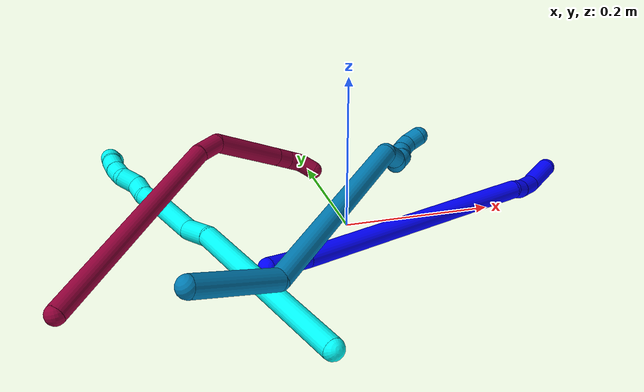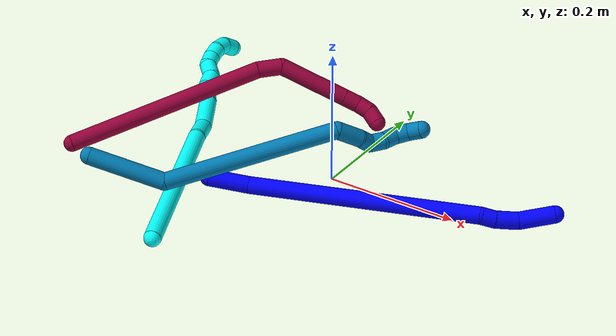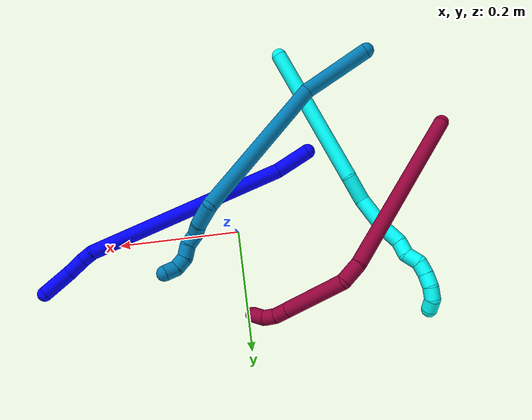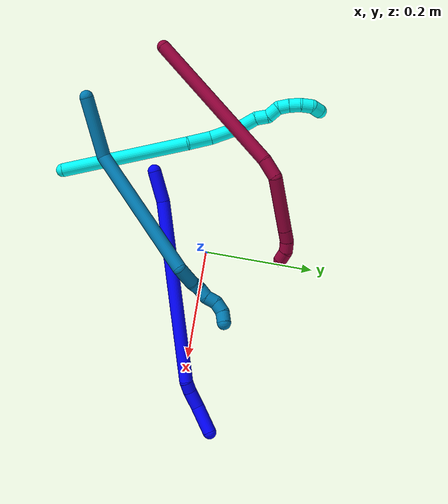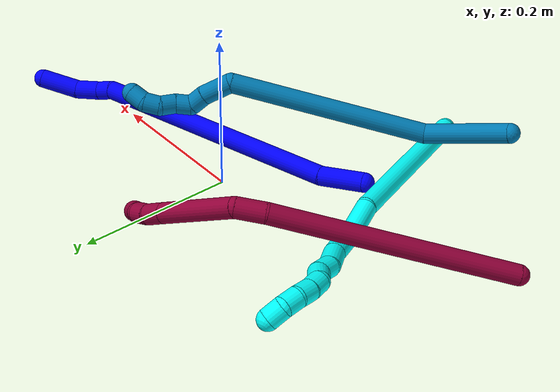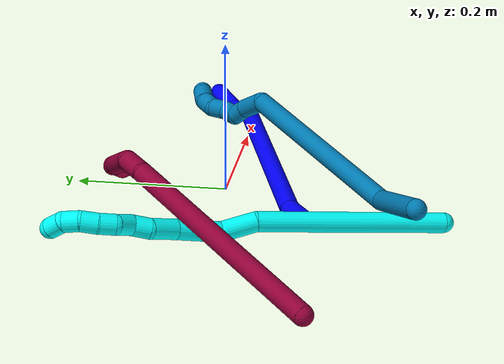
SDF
<sdf version="1.7">
 <world name="default">
  <model name="1">
   <static>0</static>
   <link name="1">
    <collision name="collision-cylinder-e_1_1_4">
     <pose>0.028412 0.007759 -0.000709 -1.66189 1.30316 -1.39208</pose>
     <geometry><cylinder><radius>0.0125</radius><length>0.058921</length></cylinder></geometry>
     <surface>
      <friction><ode><mu>1.16</mu><mu2>1.16</mu2><slip1>0</slip1><slip2>0</slip2></ode></friction>
      <contact><ode><kp>1e+06</kp><kd>1</kd><max_vel>0</max_vel><min_depth>0.001</min_depth></ode></contact>
     </surface>
    </collision>
    <visual name="visual-cylinder-e_1_1_4">
     <pose>0.028412 0.007759 -0.000709 -1.66189 1.30316 -1.39208</pose>
     <geometry><cylinder><radius>0.0125</radius><length>0.058921</length></cylinder></geometry>
     <material><ambient>0 0 1 1</ambient></material>
    </visual>
    <collision name="collision-cylinder-e_2_4_5">
     <pose>0.212809 0.070879 0.028861 -1.07032 1.18639 -0.76051</pose>
     <geometry><cylinder><radius>0.0125</radius><length>0.33653</length></cylinder></geometry>
     <surface>
      <friction><ode><mu>1.16</mu><mu2>1.16</mu2><slip1>0</slip1><slip2>0</slip2></ode></friction>
      <contact><ode><kp>1e+06</kp><kd>1</kd><max_vel>0</max_vel><min_depth>0.001</min_depth></ode></contact>
     </surface>
    </collision>
    <visual name="visual-cylinder-e_2_4_5">
     <pose>0.212809 0.070879 0.028861 -1.07032 1.18639 -0.76051</pose>
     <geometry><cylinder><radius>0.0125</radius><length>0.33653</length></cylinder></geometry>
     <material><ambient>0 0 1 1</ambient></material>
    </visual>
    <collision name="collision-cylinder-e_3_5_6">
     <pose>0.37857 0.12798 0.057715 -2.25688 1.34469 -2.06813</pose>
     <geometry><cylinder><radius>0.0125</radius><length>0.020063</length></cylinder></geometry>
     <surface>
      <friction><ode><mu>1.16</mu><mu2>1.16</mu2><slip1>0</slip1><slip2>0</slip2></ode></friction>
      <contact><ode><kp>1e+06</kp><kd>1</kd><max_vel>0</max_vel><min_depth>0.001</min_depth></ode></contact>
     </surface>
    </collision>
    <visual name="visual-cylinder-e_3_5_6">
     <pose>0.37857 0.12798 0.057715 -2.25688 1.34469 -2.06813</pose>
     <geometry><cylinder><radius>0.0125</radius><length>0.020063</length></cylinder></geometry>
     <material><ambient>0 0 1 1</ambient></material>
    </visual>
    <collision name="collision-cylinder-e_4_6_7">
     <pose>0.403252 0.135739 0.053483 -2.00722 1.15166 -1.58979</pose>
     <geometry><cylinder><radius>0.0125</radius><length>0.032636</length></cylinder></geometry>
     <surface>
      <friction><ode><mu>1.16</mu><mu2>1.16</mu2><slip1>0</slip1><slip2>0</slip2></ode></friction>
      <contact><ode><kp>1e+06</kp><kd>1</kd><max_vel>0</max_vel><min_depth>0.001</min_depth></ode></contact>
     </surface>
    </collision>
    <visual name="visual-cylinder-e_4_6_7">
     <pose>0.403252 0.135739 0.053483 -2.00722 1.15166 -1.58979</pose>
     <geometry><cylinder><radius>0.0125</radius><length>0.032636</length></cylinder></geometry>
     <material><ambient>0 0 1 1</ambient></material>
    </visual>
    <collision name="collision-cylinder-e_5_7_2">
     <pose>0.439124 0.15698 0.049809 -1.62771 0.942034 -0.988854</pose>
     <geometry><cylinder><radius>0.0125</radius><length>0.05185</length></cylinder></geometry>
     <surface>
      <friction><ode><mu>1.16</mu><mu2>1.16</mu2><slip1>0</slip1><slip2>0</slip2></ode></friction>
      <contact><ode><kp>1e+06</kp><kd>1</kd><max_vel>0</max_vel><min_depth>0.001</min_depth></ode></contact>
     </surface>
    </collision>
    <visual name="visual-cylinder-e_5_7_2">
     <pose>0.439124 0.15698 0.049809 -1.62771 0.942034 -0.988854</pose>
     <geometry><cylinder><radius>0.0125</radius><length>0.05185</length></cylinder></geometry>
     <material><ambient>0 0 1 1</ambient></material>
    </visual>
    <collision name="collision-sphere-2">
     <pose>0.460091 0.172203 0.048941 0 -0 0</pose>
     <geometry><sphere><radius>0.0125</radius></sphere></geometry>
     <surface>
      <friction><ode><mu>1.16</mu><mu2>1.16</mu2><slip1>0</slip1><slip2>0</slip2></ode></friction>
      <contact><ode><kp>1e+06</kp><kd>1</kd><max_vel>0</max_vel><min_depth>0.001</min_depth></ode></contact>
     </surface>
    </collision>
    <visual name="visual-sphere-2">
     <pose>0.460091 0.172203 0.048941 0 -0 0</pose>
     <geometry><sphere><radius>0.0125</radius></sphere></geometry>
     <material><ambient>0 0 1 1</ambient></material>
    </visual>
    <collision name="collision-sphere-7">
     <pose>0.418157 0.141757 0.050676 0 -0 0</pose>
     <geometry><sphere><radius>0.0125</radius></sphere></geometry>
     <surface>
      <friction><ode><mu>1.16</mu><mu2>1.16</mu2><slip1>0</slip1><slip2>0</slip2></ode></friction>
      <contact><ode><kp>1e+06</kp><kd>1</kd><max_vel>0</max_vel><min_depth>0.001</min_depth></ode></contact>
     </surface>
    </collision>
    <visual name="visual-sphere-7">
     <pose>0.418157 0.141757 0.050676 0 -0 0</pose>
     <geometry><sphere><radius>0.0125</radius></sphere></geometry>
     <material><ambient>0 0 1 1</ambient></material>
    </visual>
    <collision name="collision-sphere-6">
     <pose>0.388346 0.12972 0.05629 0 -0 0</pose>
     <geometry><sphere><radius>0.0125</radius></sphere></geometry>
     <surface>
      <friction><ode><mu>1.16</mu><mu2>1.16</mu2><slip1>0</slip1><slip2>0</slip2></ode></friction>
      <contact><ode><kp>1e+06</kp><kd>1</kd><max_vel>0</max_vel><min_depth>0.001</min_depth></ode></contact>
     </surface>
    </collision>
    <visual name="visual-sphere-6">
     <pose>0.388346 0.12972 0.05629 0 -0 0</pose>
     <geometry><sphere><radius>0.0125</radius></sphere></geometry>
     <material><ambient>0 0 1 1</ambient></material>
    </visual>
    <collision name="collision-sphere-5">
     <pose>0.368794 0.12624 0.05914 0 -0 0</pose>
     <geometry><sphere><radius>0.0125</radius></sphere></geometry>
     <surface>
      <friction><ode><mu>1.16</mu><mu2>1.16</mu2><slip1>0</slip1><slip2>0</slip2></ode></friction>
      <contact><ode><kp>1e+06</kp><kd>1</kd><max_vel>0</max_vel><min_depth>0.001</min_depth></ode></contact>
     </surface>
    </collision>
    <visual name="visual-sphere-5">
     <pose>0.368794 0.12624 0.05914 0 -0 0</pose>
     <geometry><sphere><radius>0.0125</radius></sphere></geometry>
     <material><ambient>0 0 1 1</ambient></material>
    </visual>
    <collision name="collision-sphere-1">
     <geometry><sphere><radius>0.0125</radius></sphere></geometry>
     <surface>
      <friction><ode><mu>1.16</mu><mu2>1.16</mu2><slip1>0</slip1><slip2>0</slip2></ode></friction>
      <contact><ode><kp>1e+06</kp><kd>1</kd><max_vel>0</max_vel><min_depth>0.001</min_depth></ode></contact>
     </surface>
    </collision>
    <visual name="visual-sphere-1">
     <geometry><sphere><radius>0.0125</radius></sphere></geometry>
     <material><ambient>0 0 1 1</ambient></material>
    </visual>
    <collision name="collision-sphere-4">
     <pose>0.056823 0.015517 -0.001417 0 -0 0</pose>
     <geometry><sphere><radius>0.0125</radius></sphere></geometry>
     <surface>
      <friction><ode><mu>1.16</mu><mu2>1.16</mu2><slip1>0</slip1><slip2>0</slip2></ode></friction>
      <contact><ode><kp>1e+06</kp><kd>1</kd><max_vel>0</max_vel><min_depth>0.001</min_depth></ode></contact>
     </surface>
    </collision>
    <visual name="visual-sphere-4">
     <pose>0.056823 0.015517 -0.001417 0 -0 0</pose>
     <geometry><sphere><radius>0.0125</radius></sphere></geometry>
     <material><ambient>0 0 1 1</ambient></material>
    </visual>
    <inertial>
     <pose>0.23363 0.078894 0.030314 0 -0 0</pose>
     <mass>0.5</mass>
     <inertia>
      <ixx>6.9e-05</ixx>
      <ixy>0</ixy>
      <ixz>0</ixz>
      <iyy>0.002104</iyy>
      <iyz>0</iyz>
      <izz>-0.004052</izz>
     </inertia>
    </inertial>
   </link>
   <pose>-0.131382 -0.119922 0.01943 1.05977 0.358976 0.295271</pose>
  </model>
  <model name="3">
   <static>0</static>
   <link name="3">
    <collision name="collision-cylinder-e_1_1_4">
     <pose>0.005579 0.063101 -0.100642 -2.58157 0.046929 -0.162864</pose>
     <geometry><cylinder><radius>0.0125</radius><length>0.237837</length></cylinder></geometry>
     <surface>
      <friction><ode><mu>1.16</mu><mu2>1.16</mu2><slip1>0</slip1><slip2>0</slip2></ode></friction>
      <contact><ode><kp>1e+06</kp><kd>1</kd><max_vel>0</max_vel><min_depth>0.001</min_depth></ode></contact>
     </surface>
    </collision>
    <visual name="visual-cylinder-e_1_1_4">
     <pose>0.005579 0.063101 -0.100642 -2.58157 0.046929 -0.162864</pose>
     <geometry><cylinder><radius>0.0125</radius><length>0.237837</length></cylinder></geometry>
     <material><ambient>0.003922 1 0.996078 1</ambient></material>
    </visual>
    <collision name="collision-cylinder-e_2_4_5">
     <pose>0.009594 0.132647 -0.222552 -2.84735 -0.070217 0.465426</pose>
     <geometry><cylinder><radius>0.0125</radius><length>0.044556</length></cylinder></geometry>
     <surface>
      <friction><ode><mu>1.16</mu><mu2>1.16</mu2><slip1>0</slip1><slip2>0</slip2></ode></friction>
      <contact><ode><kp>1e+06</kp><kd>1</kd><max_vel>0</max_vel><min_depth>0.001</min_depth></ode></contact>
     </surface>
    </collision>
    <visual name="visual-cylinder-e_2_4_5">
     <pose>0.009594 0.132647 -0.222552 -2.84735 -0.070217 0.465426</pose>
     <geometry><cylinder><radius>0.0125</radius><length>0.044556</length></cylinder></geometry>
     <material><ambient>0.003922 1 0.996078 1</ambient></material>
    </visual>
    <collision name="collision-cylinder-e_3_5_6">
     <pose>0.006949 0.157017 -0.26561 -2.4532 -0.038346 0.106885</pose>
     <geometry><cylinder><radius>0.0125</radius><length>0.056474</length></cylinder></geometry>
     <surface>
      <friction><ode><mu>1.16</mu><mu2>1.16</mu2><slip1>0</slip1><slip2>0</slip2></ode></friction>
      <contact><ode><kp>1e+06</kp><kd>1</kd><max_vel>0</max_vel><min_depth>0.001</min_depth></ode></contact>
     </surface>
    </collision>
    <visual name="visual-cylinder-e_3_5_6">
     <pose>0.006949 0.157017 -0.26561 -2.4532 -0.038346 0.106885</pose>
     <geometry><cylinder><radius>0.0125</radius><length>0.056474</length></cylinder></geometry>
     <material><ambient>0.003922 1 0.996078 1</ambient></material>
    </visual>
    <collision name="collision-cylinder-e_4_6_7">
     <pose>0.002436 0.186484 -0.299285 -2.37082 -0.204191 0.494753</pose>
     <geometry><cylinder><radius>0.0125</radius><length>0.033834</length></cylinder></geometry>
     <surface>
      <friction><ode><mu>1.16</mu><mu2>1.16</mu2><slip1>0</slip1><slip2>0</slip2></ode></friction>
      <contact><ode><kp>1e+06</kp><kd>1</kd><max_vel>0</max_vel><min_depth>0.001</min_depth></ode></contact>
     </surface>
    </collision>
    <visual name="visual-cylinder-e_4_6_7">
     <pose>0.002436 0.186484 -0.299285 -2.37082 -0.204191 0.494753</pose>
     <geometry><cylinder><radius>0.0125</radius><length>0.033834</length></cylinder></geometry>
     <material><ambient>0.003922 1 0.996078 1</ambient></material>
    </visual>
    <collision name="collision-cylinder-e_5_7_8">
     <pose>0.000776 0.205411 -0.31977 -2.43202 0.154901 -0.412997</pose>
     <geometry><cylinder><radius>0.0125</radius><length>0.02295</length></cylinder></geometry>
     <surface>
      <friction><ode><mu>1.16</mu><mu2>1.16</mu2><slip1>0</slip1><slip2>0</slip2></ode></friction>
      <contact><ode><kp>1e+06</kp><kd>1</kd><max_vel>0</max_vel><min_depth>0.001</min_depth></ode></contact>
     </surface>
    </collision>
    <visual name="visual-cylinder-e_5_7_8">
     <pose>0.000776 0.205411 -0.31977 -2.43202 0.154901 -0.412997</pose>
     <geometry><cylinder><radius>0.0125</radius><length>0.02295</length></cylinder></geometry>
     <material><ambient>0.003922 1 0.996078 1</ambient></material>
    </visual>
    <collision name="collision-cylinder-e_6_8_9">
     <pose>-0.00151 0.221419 -0.335216 -2.24186 -0.353098 0.707801</pose>
     <geometry><cylinder><radius>0.0125</radius><length>0.023464</length></cylinder></geometry>
     <surface>
      <friction><ode><mu>1.16</mu><mu2>1.16</mu2><slip1>0</slip1><slip2>0</slip2></ode></friction>
      <contact><ode><kp>1e+06</kp><kd>1</kd><max_vel>0</max_vel><min_depth>0.001</min_depth></ode></contact>
     </surface>
    </collision>
    <visual name="visual-cylinder-e_6_8_9">
     <pose>-0.00151 0.221419 -0.335216 -2.24186 -0.353098 0.707801</pose>
     <geometry><cylinder><radius>0.0125</radius><length>0.023464</length></cylinder></geometry>
     <material><ambient>0.003922 1 0.996078 1</ambient></material>
    </visual>
    <collision name="collision-cylinder-e_7_9_10">
     <pose>-0.004759 0.235702 -0.350303 -2.53967 0.080673 -0.258598</pose>
     <geometry><cylinder><radius>0.0125</radius><length>0.020063</length></cylinder></geometry>
     <surface>
      <friction><ode><mu>1.16</mu><mu2>1.16</mu2><slip1>0</slip1><slip2>0</slip2></ode></friction>
      <contact><ode><kp>1e+06</kp><kd>1</kd><max_vel>0</max_vel><min_depth>0.001</min_depth></ode></contact>
     </surface>
    </collision>
    <visual name="visual-cylinder-e_7_9_10">
     <pose>-0.004759 0.235702 -0.350303 -2.53967 0.080673 -0.258598</pose>
     <geometry><cylinder><radius>0.0125</radius><length>0.020063</length></cylinder></geometry>
     <material><ambient>0.003922 1 0.996078 1</ambient></material>
    </visual>
    <collision name="collision-cylinder-e_8_10_11">
     <pose>-0.001526 0.246956 -0.366928 -2.55329 0.236109 -0.74634</pose>
     <geometry><cylinder><radius>0.0125</radius><length>0.020731</length></cylinder></geometry>
     <surface>
      <friction><ode><mu>1.16</mu><mu2>1.16</mu2><slip1>0</slip1><slip2>0</slip2></ode></friction>
      <contact><ode><kp>1e+06</kp><kd>1</kd><max_vel>0</max_vel><min_depth>0.001</min_depth></ode></contact>
     </surface>
    </collision>
    <visual name="visual-cylinder-e_8_10_11">
     <pose>-0.001526 0.246956 -0.366928 -2.55329 0.236109 -0.74634</pose>
     <geometry><cylinder><radius>0.0125</radius><length>0.020731</length></cylinder></geometry>
     <material><ambient>0.003922 1 0.996078 1</ambient></material>
    </visual>
    <collision name="collision-cylinder-e_9_11_12">
     <pose>0.003879 0.255297 -0.384492 -2.85079 0.301464 -1.60732</pose>
     <geometry><cylinder><radius>0.0125</radius><length>0.020071</length></cylinder></geometry>
     <surface>
      <friction><ode><mu>1.16</mu><mu2>1.16</mu2><slip1>0</slip1><slip2>0</slip2></ode></friction>
      <contact><ode><kp>1e+06</kp><kd>1</kd><max_vel>0</max_vel><min_depth>0.001</min_depth></ode></contact>
     </surface>
    </collision>
    <visual name="visual-cylinder-e_9_11_12">
     <pose>0.003879 0.255297 -0.384492 -2.85079 0.301464 -1.60732</pose>
     <geometry><cylinder><radius>0.0125</radius><length>0.020071</length></cylinder></geometry>
     <material><ambient>0.003922 1 0.996078 1</ambient></material>
    </visual>
    <collision name="collision-cylinder-e_10_12_2">
     <pose>0.01058 0.255246 -0.402534 2.83571 0.380908 1.79266</pose>
     <geometry><cylinder><radius>0.0125</radius><length>0.02002</length></cylinder></geometry>
     <surface>
      <friction><ode><mu>1.16</mu><mu2>1.16</mu2><slip1>0</slip1><slip2>0</slip2></ode></friction>
      <contact><ode><kp>1e+06</kp><kd>1</kd><max_vel>0</max_vel><min_depth>0.001</min_depth></ode></contact>
     </surface>
    </collision>
    <visual name="visual-cylinder-e_10_12_2">
     <pose>0.01058 0.255246 -0.402534 2.83571 0.380908 1.79266</pose>
     <geometry><cylinder><radius>0.0125</radius><length>0.02002</length></cylinder></geometry>
     <material><ambient>0.003922 1 0.996078 1</ambient></material>
    </visual>
    <collision name="collision-sphere-2">
     <pose>0.014301 0.252448 -0.411395 0 -0 0</pose>
     <geometry><sphere><radius>0.0125</radius></sphere></geometry>
     <surface>
      <friction><ode><mu>1.16</mu><mu2>1.16</mu2><slip1>0</slip1><slip2>0</slip2></ode></friction>
      <contact><ode><kp>1e+06</kp><kd>1</kd><max_vel>0</max_vel><min_depth>0.001</min_depth></ode></contact>
     </surface>
    </collision>
    <visual name="visual-sphere-2">
     <pose>0.014301 0.252448 -0.411395 0 -0 0</pose>
     <geometry><sphere><radius>0.0125</radius></sphere></geometry>
     <material><ambient>0.003922 1 0.996078 1</ambient></material>
    </visual>
    <collision name="collision-sphere-12">
     <pose>0.006858 0.258045 -0.393673 0 -0 0</pose>
     <geometry><sphere><radius>0.0125</radius></sphere></geometry>
     <surface>
      <friction><ode><mu>1.16</mu><mu2>1.16</mu2><slip1>0</slip1><slip2>0</slip2></ode></friction>
      <contact><ode><kp>1e+06</kp><kd>1</kd><max_vel>0</max_vel><min_depth>0.001</min_depth></ode></contact>
     </surface>
    </collision>
    <visual name="visual-sphere-12">
     <pose>0.006858 0.258045 -0.393673 0 -0 0</pose>
     <geometry><sphere><radius>0.0125</radius></sphere></geometry>
     <material><ambient>0.003922 1 0.996078 1</ambient></material>
    </visual>
    <collision name="collision-sphere-11">
     <pose>0.000899 0.252549 -0.375311 0 -0 0</pose>
     <geometry><sphere><radius>0.0125</radius></sphere></geometry>
     <surface>
      <friction><ode><mu>1.16</mu><mu2>1.16</mu2><slip1>0</slip1><slip2>0</slip2></ode></friction>
      <contact><ode><kp>1e+06</kp><kd>1</kd><max_vel>0</max_vel><min_depth>0.001</min_depth></ode></contact>
     </surface>
    </collision>
    <visual name="visual-sphere-11">
     <pose>0.000899 0.252549 -0.375311 0 -0 0</pose>
     <geometry><sphere><radius>0.0125</radius></sphere></geometry>
     <material><ambient>0.003922 1 0.996078 1</ambient></material>
    </visual>
    <collision name="collision-sphere-10">
     <pose>-0.003951 0.241364 -0.358544 0 -0 0</pose>
     <geometry><sphere><radius>0.0125</radius></sphere></geometry>
     <surface>
      <friction><ode><mu>1.16</mu><mu2>1.16</mu2><slip1>0</slip1><slip2>0</slip2></ode></friction>
      <contact><ode><kp>1e+06</kp><kd>1</kd><max_vel>0</max_vel><min_depth>0.001</min_depth></ode></contact>
     </surface>
    </collision>
    <visual name="visual-sphere-10">
     <pose>-0.003951 0.241364 -0.358544 0 -0 0</pose>
     <geometry><sphere><radius>0.0125</radius></sphere></geometry>
     <material><ambient>0.003922 1 0.996078 1</ambient></material>
    </visual>
    <collision name="collision-sphere-9">
     <pose>-0.005567 0.23004 -0.342061 0 -0 0</pose>
     <geometry><sphere><radius>0.0125</radius></sphere></geometry>
     <surface>
      <friction><ode><mu>1.16</mu><mu2>1.16</mu2><slip1>0</slip1><slip2>0</slip2></ode></friction>
      <contact><ode><kp>1e+06</kp><kd>1</kd><max_vel>0</max_vel><min_depth>0.001</min_depth></ode></contact>
     </surface>
    </collision>
    <visual name="visual-sphere-9">
     <pose>-0.005567 0.23004 -0.342061 0 -0 0</pose>
     <geometry><sphere><radius>0.0125</radius></sphere></geometry>
     <material><ambient>0.003922 1 0.996078 1</ambient></material>
    </visual>
    <collision name="collision-sphere-4">
     <pose>0.011157 0.126202 -0.201284 0 -0 0</pose>
     <geometry><sphere><radius>0.0125</radius></sphere></geometry>
     <surface>
      <friction><ode><mu>1.16</mu><mu2>1.16</mu2><slip1>0</slip1><slip2>0</slip2></ode></friction>
      <contact><ode><kp>1e+06</kp><kd>1</kd><max_vel>0</max_vel><min_depth>0.001</min_depth></ode></contact>
     </surface>
    </collision>
    <visual name="visual-sphere-4">
     <pose>0.011157 0.126202 -0.201284 0 -0 0</pose>
     <geometry><sphere><radius>0.0125</radius></sphere></geometry>
     <material><ambient>0.003922 1 0.996078 1</ambient></material>
    </visual>
    <collision name="collision-sphere-1">
     <geometry><sphere><radius>0.0125</radius></sphere></geometry>
     <surface>
      <friction><ode><mu>1.16</mu><mu2>1.16</mu2><slip1>0</slip1><slip2>0</slip2></ode></friction>
      <contact><ode><kp>1e+06</kp><kd>1</kd><max_vel>0</max_vel><min_depth>0.001</min_depth></ode></contact>
     </surface>
    </collision>
    <visual name="visual-sphere-1">
     <geometry><sphere><radius>0.0125</radius></sphere></geometry>
     <material><ambient>0.003922 1 0.996078 1</ambient></material>
    </visual>
    <collision name="collision-sphere-8">
     <pose>0.002547 0.212798 -0.328371 0 -0 0</pose>
     <geometry><sphere><radius>0.0125</radius></sphere></geometry>
     <surface>
      <friction><ode><mu>1.16</mu><mu2>1.16</mu2><slip1>0</slip1><slip2>0</slip2></ode></friction>
      <contact><ode><kp>1e+06</kp><kd>1</kd><max_vel>0</max_vel><min_depth>0.001</min_depth></ode></contact>
     </surface>
    </collision>
    <visual name="visual-sphere-8">
     <pose>0.002547 0.212798 -0.328371 0 -0 0</pose>
     <geometry><sphere><radius>0.0125</radius></sphere></geometry>
     <material><ambient>0.003922 1 0.996078 1</ambient></material>
    </visual>
    <collision name="collision-sphere-5">
     <pose>0.008031 0.139092 -0.24382 0 -0 0</pose>
     <geometry><sphere><radius>0.0125</radius></sphere></geometry>
     <surface>
      <friction><ode><mu>1.16</mu><mu2>1.16</mu2><slip1>0</slip1><slip2>0</slip2></ode></friction>
      <contact><ode><kp>1e+06</kp><kd>1</kd><max_vel>0</max_vel><min_depth>0.001</min_depth></ode></contact>
     </surface>
    </collision>
    <visual name="visual-sphere-5">
     <pose>0.008031 0.139092 -0.24382 0 -0 0</pose>
     <geometry><sphere><radius>0.0125</radius></sphere></geometry>
     <material><ambient>0.003922 1 0.996078 1</ambient></material>
    </visual>
    <collision name="collision-sphere-6">
     <pose>0.005866 0.174943 -0.287401 0 -0 0</pose>
     <geometry><sphere><radius>0.0125</radius></sphere></geometry>
     <surface>
      <friction><ode><mu>1.16</mu><mu2>1.16</mu2><slip1>0</slip1><slip2>0</slip2></ode></friction>
      <contact><ode><kp>1e+06</kp><kd>1</kd><max_vel>0</max_vel><min_depth>0.001</min_depth></ode></contact>
     </surface>
    </collision>
    <visual name="visual-sphere-6">
     <pose>0.005866 0.174943 -0.287401 0 -0 0</pose>
     <geometry><sphere><radius>0.0125</radius></sphere></geometry>
     <material><ambient>0.003922 1 0.996078 1</ambient></material>
    </visual>
    <collision name="collision-sphere-7">
     <pose>-0.000994 0.198025 -0.311168 0 -0 0</pose>
     <geometry><sphere><radius>0.0125</radius></sphere></geometry>
     <surface>
      <friction><ode><mu>1.16</mu><mu2>1.16</mu2><slip1>0</slip1><slip2>0</slip2></ode></friction>
      <contact><ode><kp>1e+06</kp><kd>1</kd><max_vel>0</max_vel><min_depth>0.001</min_depth></ode></contact>
     </surface>
    </collision>
    <visual name="visual-sphere-7">
     <pose>-0.000994 0.198025 -0.311168 0 -0 0</pose>
     <geometry><sphere><radius>0.0125</radius></sphere></geometry>
     <material><ambient>0.003922 1 0.996078 1</ambient></material>
    </visual>
    <inertial>
     <pose>0.004748 0.132174 -0.209187 0 -0 0</pose>
     <mass>0.5</mass>
     <inertia>
      <ixx>0.000974</ixx>
      <ixy>0</ixy>
      <ixz>0</ixz>
      <iyy>-0.001123</iyy>
      <iyz>0</iyz>
      <izz>-0.000705</izz>
     </inertia>
    </inertial>
   </link>
   <pose>-0.104616 -0.287722 0.017126 1.10676 -0.243958 0.393658</pose>
  </model>
  <model name="8">
   <static>0</static>
   <link name="8">
    <collision name="collision-cylinder-e_1_1_4">
     <pose>0.100751 0.096075 0.049064 -1.09864 0.751251 -0.473751</pose>
     <geometry><cylinder><radius>0.0125</radius><length>0.295219</length></cylinder></geometry>
     <surface>
      <friction><ode><mu>1.16</mu><mu2>1.16</mu2><slip1>0</slip1><slip2>0</slip2></ode></friction>
      <contact><ode><kp>1e+06</kp><kd>1</kd><max_vel>0</max_vel><min_depth>0.001</min_depth></ode></contact>
     </surface>
    </collision>
    <visual name="visual-cylinder-e_1_1_4">
     <pose>0.100751 0.096075 0.049064 -1.09864 0.751251 -0.473751</pose>
     <geometry><cylinder><radius>0.0125</radius><length>0.295219</length></cylinder></geometry>
     <material><ambient>0.584314 0 0.227451 1</ambient></material>
    </visual>
    <collision name="collision-cylinder-e_2_4_5">
     <pose>0.2155 0.203067 0.100301 -1.37437 0.898968 -0.753899</pose>
     <geometry><cylinder><radius>0.0125</radius><length>0.035768</length></cylinder></geometry>
     <surface>
      <friction><ode><mu>1.16</mu><mu2>1.16</mu2><slip1>0</slip1><slip2>0</slip2></ode></friction>
      <contact><ode><kp>1e+06</kp><kd>1</kd><max_vel>0</max_vel><min_depth>0.001</min_depth></ode></contact>
     </surface>
    </collision>
    <visual name="visual-cylinder-e_2_4_5">
     <pose>0.2155 0.203067 0.100301 -1.37437 0.898968 -0.753899</pose>
     <geometry><cylinder><radius>0.0125</radius><length>0.035768</length></cylinder></geometry>
     <material><ambient>0.584314 0 0.227451 1</ambient></material>
    </visual>
    <collision name="collision-cylinder-e_3_5_6">
     <pose>0.270692 0.235949 0.079817 -2.3717 0.917135 -1.76711</pose>
     <geometry><cylinder><radius>0.0125</radius><length>0.103782</length></cylinder></geometry>
     <surface>
      <friction><ode><mu>1.16</mu><mu2>1.16</mu2><slip1>0</slip1><slip2>0</slip2></ode></friction>
      <contact><ode><kp>1e+06</kp><kd>1</kd><max_vel>0</max_vel><min_depth>0.001</min_depth></ode></contact>
     </surface>
    </collision>
    <visual name="visual-cylinder-e_3_5_6">
     <pose>0.270692 0.235949 0.079817 -2.3717 0.917135 -1.76711</pose>
     <geometry><cylinder><radius>0.0125</radius><length>0.103782</length></cylinder></geometry>
     <material><ambient>0.584314 0 0.227451 1</ambient></material>
    </visual>
    <collision name="collision-cylinder-e_4_6_7">
     <pose>0.32112 0.262921 0.052021 -2.36924 0.910043 -1.75484</pose>
     <geometry><cylinder><radius>0.0125</radius><length>0.02339</length></cylinder></geometry>
     <surface>
      <friction><ode><mu>1.16</mu><mu2>1.16</mu2><slip1>0</slip1><slip2>0</slip2></ode></friction>
      <contact><ode><kp>1e+06</kp><kd>1</kd><max_vel>0</max_vel><min_depth>0.001</min_depth></ode></contact>
     </surface>
    </collision>
    <visual name="visual-cylinder-e_4_6_7">
     <pose>0.32112 0.262921 0.052021 -2.36924 0.910043 -1.75484</pose>
     <geometry><cylinder><radius>0.0125</radius><length>0.02339</length></cylinder></geometry>
     <material><ambient>0.584314 0 0.227451 1</ambient></material>
    </visual>
    <collision name="collision-cylinder-e_5_7_8">
     <pose>0.339205 0.269658 0.042214 -2.78685 1.05871 -2.54698</pose>
     <geometry><cylinder><radius>0.0125</radius><length>0.020308</length></cylinder></geometry>
     <surface>
      <friction><ode><mu>1.16</mu><mu2>1.16</mu2><slip1>0</slip1><slip2>0</slip2></ode></friction>
      <contact><ode><kp>1e+06</kp><kd>1</kd><max_vel>0</max_vel><min_depth>0.001</min_depth></ode></contact>
     </surface>
    </collision>
    <visual name="visual-cylinder-e_5_7_8">
     <pose>0.339205 0.269658 0.042214 -2.78685 1.05871 -2.54698</pose>
     <geometry><cylinder><radius>0.0125</radius><length>0.020308</length></cylinder></geometry>
     <material><ambient>0.584314 0 0.227451 1</ambient></material>
    </visual>
    <collision name="collision-cylinder-e_6_8_2">
     <pose>0.355816 0.269323 0.030375 2.86161 0.804809 2.50218</pose>
     <geometry><cylinder><radius>0.0125</radius><length>0.021533</length></cylinder></geometry>
     <surface>
      <friction><ode><mu>1.16</mu><mu2>1.16</mu2><slip1>0</slip1><slip2>0</slip2></ode></friction>
      <contact><ode><kp>1e+06</kp><kd>1</kd><max_vel>0</max_vel><min_depth>0.001</min_depth></ode></contact>
     </surface>
    </collision>
    <visual name="visual-cylinder-e_6_8_2">
     <pose>0.355816 0.269323 0.030375 2.86161 0.804809 2.50218</pose>
     <geometry><cylinder><radius>0.0125</radius><length>0.021533</length></cylinder></geometry>
     <material><ambient>0.584314 0 0.227451 1</ambient></material>
    </visual>
    <collision name="collision-sphere-2">
     <pose>0.363575 0.267261 0.023202 0 -0 0</pose>
     <geometry><sphere><radius>0.0125</radius></sphere></geometry>
     <surface>
      <friction><ode><mu>1.16</mu><mu2>1.16</mu2><slip1>0</slip1><slip2>0</slip2></ode></friction>
      <contact><ode><kp>1e+06</kp><kd>1</kd><max_vel>0</max_vel><min_depth>0.001</min_depth></ode></contact>
     </surface>
    </collision>
    <visual name="visual-sphere-2">
     <pose>0.363575 0.267261 0.023202 0 -0 0</pose>
     <geometry><sphere><radius>0.0125</radius></sphere></geometry>
     <material><ambient>0.584314 0 0.227451 1</ambient></material>
    </visual>
    <collision name="collision-sphere-4">
     <pose>0.201503 0.19215 0.098128 0 -0 0</pose>
     <geometry><sphere><radius>0.0125</radius></sphere></geometry>
     <surface>
      <friction><ode><mu>1.16</mu><mu2>1.16</mu2><slip1>0</slip1><slip2>0</slip2></ode></friction>
      <contact><ode><kp>1e+06</kp><kd>1</kd><max_vel>0</max_vel><min_depth>0.001</min_depth></ode></contact>
     </surface>
    </collision>
    <visual name="visual-sphere-4">
     <pose>0.201503 0.19215 0.098128 0 -0 0</pose>
     <geometry><sphere><radius>0.0125</radius></sphere></geometry>
     <material><ambient>0.584314 0 0.227451 1</ambient></material>
    </visual>
    <collision name="collision-sphere-1">
     <geometry><sphere><radius>0.0125</radius></sphere></geometry>
     <surface>
      <friction><ode><mu>1.16</mu><mu2>1.16</mu2><slip1>0</slip1><slip2>0</slip2></ode></friction>
      <contact><ode><kp>1e+06</kp><kd>1</kd><max_vel>0</max_vel><min_depth>0.001</min_depth></ode></contact>
     </surface>
    </collision>
    <visual name="visual-sphere-1">
     <geometry><sphere><radius>0.0125</radius></sphere></geometry>
     <material><ambient>0.584314 0 0.227451 1</ambient></material>
    </visual>
    <collision name="collision-sphere-8">
     <pose>0.348057 0.271386 0.037548 0 -0 0</pose>
     <geometry><sphere><radius>0.0125</radius></sphere></geometry>
     <surface>
      <friction><ode><mu>1.16</mu><mu2>1.16</mu2><slip1>0</slip1><slip2>0</slip2></ode></friction>
      <contact><ode><kp>1e+06</kp><kd>1</kd><max_vel>0</max_vel><min_depth>0.001</min_depth></ode></contact>
     </surface>
    </collision>
    <visual name="visual-sphere-8">
     <pose>0.348057 0.271386 0.037548 0 -0 0</pose>
     <geometry><sphere><radius>0.0125</radius></sphere></geometry>
     <material><ambient>0.584314 0 0.227451 1</ambient></material>
    </visual>
    <collision name="collision-sphere-5">
     <pose>0.229498 0.213985 0.102473 0 -0 0</pose>
     <geometry><sphere><radius>0.0125</radius></sphere></geometry>
     <surface>
      <friction><ode><mu>1.16</mu><mu2>1.16</mu2><slip1>0</slip1><slip2>0</slip2></ode></friction>
      <contact><ode><kp>1e+06</kp><kd>1</kd><max_vel>0</max_vel><min_depth>0.001</min_depth></ode></contact>
     </surface>
    </collision>
    <visual name="visual-sphere-5">
     <pose>0.229498 0.213985 0.102473 0 -0 0</pose>
     <geometry><sphere><radius>0.0125</radius></sphere></geometry>
     <material><ambient>0.584314 0 0.227451 1</ambient></material>
    </visual>
    <collision name="collision-sphere-6">
     <pose>0.311887 0.257913 0.057161 0 -0 0</pose>
     <geometry><sphere><radius>0.0125</radius></sphere></geometry>
     <surface>
      <friction><ode><mu>1.16</mu><mu2>1.16</mu2><slip1>0</slip1><slip2>0</slip2></ode></friction>
      <contact><ode><kp>1e+06</kp><kd>1</kd><max_vel>0</max_vel><min_depth>0.001</min_depth></ode></contact>
     </surface>
    </collision>
    <visual name="visual-sphere-6">
     <pose>0.311887 0.257913 0.057161 0 -0 0</pose>
     <geometry><sphere><radius>0.0125</radius></sphere></geometry>
     <material><ambient>0.584314 0 0.227451 1</ambient></material>
    </visual>
    <collision name="collision-sphere-7">
     <pose>0.330354 0.267929 0.04688 0 -0 0</pose>
     <geometry><sphere><radius>0.0125</radius></sphere></geometry>
     <surface>
      <friction><ode><mu>1.16</mu><mu2>1.16</mu2><slip1>0</slip1><slip2>0</slip2></ode></friction>
      <contact><ode><kp>1e+06</kp><kd>1</kd><max_vel>0</max_vel><min_depth>0.001</min_depth></ode></contact>
     </surface>
    </collision>
    <visual name="visual-sphere-7">
     <pose>0.330354 0.267929 0.04688 0 -0 0</pose>
     <geometry><sphere><radius>0.0125</radius></sphere></geometry>
     <material><ambient>0.584314 0 0.227451 1</ambient></material>
    </visual>
    <inertial>
     <pose>0.175212 0.155078 0.058168 0 -0 0</pose>
     <mass>0.5</mass>
     <inertia>
      <ixx>0.00064</ixx>
      <ixy>0</ixy>
      <ixz>0</ixz>
      <iyy>0.000785</iyy>
      <iyz>0</iyz>
      <izz>-0.003003</izz>
     </inertia>
    </inertial>
   </link>
   <pose>-0.363123 -0.142955 0.012027 -0.214954 -0.129601 0.038629</pose>
  </model>
  <model name="9">
   <static>0</static>
   <link name="9">
    <collision name="collision-cylinder-e_1_1_4">
     <pose>0.031263 0.021501 -0.040016 -2.64854 0.602776 -1.78057</pose>
     <geometry><cylinder><radius>0.0125</radius><length>0.11029</length></cylinder></geometry>
     <surface>
      <friction><ode><mu>1.16</mu><mu2>1.16</mu2><slip1>0</slip1><slip2>0</slip2></ode></friction>
      <contact><ode><kp>1e+06</kp><kd>1</kd><max_vel>0</max_vel><min_depth>0.001</min_depth></ode></contact>
     </surface>
    </collision>
    <visual name="visual-cylinder-e_1_1_4">
     <pose>0.031263 0.021501 -0.040016 -2.64854 0.602776 -1.78057</pose>
     <geometry><cylinder><radius>0.0125</radius><length>0.11029</length></cylinder></geometry>
     <material><ambient>0 0.490196 0.709804 1</ambient></material>
    </visual>
    <collision name="collision-cylinder-e_2_4_5">
     <pose>0.137641 0.138098 -0.11019 -1.8779 0.645367 -0.857028</pose>
     <geometry><cylinder><radius>0.0125</radius><length>0.249759</length></cylinder></geometry>
     <surface>
      <friction><ode><mu>1.16</mu><mu2>1.16</mu2><slip1>0</slip1><slip2>0</slip2></ode></friction>
      <contact><ode><kp>1e+06</kp><kd>1</kd><max_vel>0</max_vel><min_depth>0.001</min_depth></ode></contact>
     </surface>
    </collision>
    <visual name="visual-cylinder-e_2_4_5">
     <pose>0.137641 0.138098 -0.11019 -1.8779 0.645367 -0.857028</pose>
     <geometry><cylinder><radius>0.0125</radius><length>0.249759</length></cylinder></geometry>
     <material><ambient>0 0.490196 0.709804 1</ambient></material>
    </visual>
    <collision name="collision-cylinder-e_3_5_6">
     <pose>0.216007 0.244566 -0.155696 -2.50389 0.16865 -0.501328</pose>
     <geometry><cylinder><radius>0.0125</radius><length>0.038753</length></cylinder></geometry>
     <surface>
      <friction><ode><mu>1.16</mu><mu2>1.16</mu2><slip1>0</slip1><slip2>0</slip2></ode></friction>
      <contact><ode><kp>1e+06</kp><kd>1</kd><max_vel>0</max_vel><min_depth>0.001</min_depth></ode></contact>
     </surface>
    </collision>
    <visual name="visual-cylinder-e_3_5_6">
     <pose>0.216007 0.244566 -0.155696 -2.50389 0.16865 -0.501328</pose>
     <geometry><cylinder><radius>0.0125</radius><length>0.038753</length></cylinder></geometry>
     <material><ambient>0 0.490196 0.709804 1</ambient></material>
    </visual>
    <collision name="collision-cylinder-e_4_6_7">
     <pose>0.218561 0.261707 -0.179456 -2.54043 -0.068388 0.219824</pose>
     <geometry><cylinder><radius>0.0125</radius><length>0.020449</length></cylinder></geometry>
     <surface>
      <friction><ode><mu>1.16</mu><mu2>1.16</mu2><slip1>0</slip1><slip2>0</slip2></ode></friction>
      <contact><ode><kp>1e+06</kp><kd>1</kd><max_vel>0</max_vel><min_depth>0.001</min_depth></ode></contact>
     </surface>
    </collision>
    <visual name="visual-cylinder-e_4_6_7">
     <pose>0.218561 0.261707 -0.179456 -2.54043 -0.068388 0.219824</pose>
     <geometry><cylinder><radius>0.0125</radius><length>0.020449</length></cylinder></geometry>
     <material><ambient>0 0.490196 0.709804 1</ambient></material>
    </visual>
    <collision name="collision-cylinder-e_5_7_8">
     <pose>0.222949 0.275579 -0.191552 -1.99752 0.519251 -0.782561</pose>
     <geometry><cylinder><radius>0.0125</radius><length>0.020504</length></cylinder></geometry>
     <surface>
      <friction><ode><mu>1.16</mu><mu2>1.16</mu2><slip1>0</slip1><slip2>0</slip2></ode></friction>
      <contact><ode><kp>1e+06</kp><kd>1</kd><max_vel>0</max_vel><min_depth>0.001</min_depth></ode></contact>
     </surface>
    </collision>
    <visual name="visual-cylinder-e_5_7_8">
     <pose>0.222949 0.275579 -0.191552 -1.99752 0.519251 -0.782561</pose>
     <geometry><cylinder><radius>0.0125</radius><length>0.020504</length></cylinder></geometry>
     <material><ambient>0 0.490196 0.709804 1</ambient></material>
    </visual>
    <collision name="collision-cylinder-e_6_8_9">
     <pose>0.229551 0.293284 -0.197887 -1.84018 0.150853 -0.197877</pose>
     <geometry><cylinder><radius>0.0125</radius><length>0.020152</length></cylinder></geometry>
     <surface>
      <friction><ode><mu>1.16</mu><mu2>1.16</mu2><slip1>0</slip1><slip2>0</slip2></ode></friction>
      <contact><ode><kp>1e+06</kp><kd>1</kd><max_vel>0</max_vel><min_depth>0.001</min_depth></ode></contact>
     </surface>
    </collision>
    <visual name="visual-cylinder-e_6_8_9">
     <pose>0.229551 0.293284 -0.197887 -1.84018 0.150853 -0.197877</pose>
     <geometry><cylinder><radius>0.0125</radius><length>0.020152</length></cylinder></geometry>
     <material><ambient>0 0.490196 0.709804 1</ambient></material>
    </visual>
    <collision name="collision-cylinder-e_7_9_10">
     <pose>0.237101 0.310455 -0.203213 -1.91056 0.644674 -0.88247</pose>
     <geometry><cylinder><radius>0.0125</radius><length>0.020086</length></cylinder></geometry>
     <surface>
      <friction><ode><mu>1.16</mu><mu2>1.16</mu2><slip1>0</slip1><slip2>0</slip2></ode></friction>
      <contact><ode><kp>1e+06</kp><kd>1</kd><max_vel>0</max_vel><min_depth>0.001</min_depth></ode></contact>
     </surface>
    </collision>
    <visual name="visual-cylinder-e_7_9_10">
     <pose>0.237101 0.310455 -0.203213 -1.91056 0.644674 -0.88247</pose>
     <geometry><cylinder><radius>0.0125</radius><length>0.020086</length></cylinder></geometry>
     <material><ambient>0 0.490196 0.709804 1</ambient></material>
    </visual>
    <collision name="collision-cylinder-e_8_10_2">
     <pose>0.2521 0.322118 -0.207606 -1.96783 1.11088 -1.50171</pose>
     <geometry><cylinder><radius>0.0125</radius><length>0.020008</length></cylinder></geometry>
     <surface>
      <friction><ode><mu>1.16</mu><mu2>1.16</mu2><slip1>0</slip1><slip2>0</slip2></ode></friction>
      <contact><ode><kp>1e+06</kp><kd>1</kd><max_vel>0</max_vel><min_depth>0.001</min_depth></ode></contact>
     </surface>
    </collision>
    <visual name="visual-cylinder-e_8_10_2">
     <pose>0.2521 0.322118 -0.207606 -1.96783 1.11088 -1.50171</pose>
     <geometry><cylinder><radius>0.0125</radius><length>0.020008</length></cylinder></geometry>
     <material><ambient>0 0.490196 0.709804 1</ambient></material>
    </visual>
    <collision name="collision-sphere-2">
     <pose>0.261065 0.326213 -0.209323 0 -0 0</pose>
     <geometry><sphere><radius>0.0125</radius></sphere></geometry>
     <surface>
      <friction><ode><mu>1.16</mu><mu2>1.16</mu2><slip1>0</slip1><slip2>0</slip2></ode></friction>
      <contact><ode><kp>1e+06</kp><kd>1</kd><max_vel>0</max_vel><min_depth>0.001</min_depth></ode></contact>
     </surface>
    </collision>
    <visual name="visual-sphere-2">
     <pose>0.261065 0.326213 -0.209323 0 -0 0</pose>
     <geometry><sphere><radius>0.0125</radius></sphere></geometry>
     <material><ambient>0 0.490196 0.709804 1</ambient></material>
    </visual>
    <collision name="collision-sphere-10">
     <pose>0.243136 0.318023 -0.205889 0 -0 0</pose>
     <geometry><sphere><radius>0.0125</radius></sphere></geometry>
     <surface>
      <friction><ode><mu>1.16</mu><mu2>1.16</mu2><slip1>0</slip1><slip2>0</slip2></ode></friction>
      <contact><ode><kp>1e+06</kp><kd>1</kd><max_vel>0</max_vel><min_depth>0.001</min_depth></ode></contact>
     </surface>
    </collision>
    <visual name="visual-sphere-10">
     <pose>0.243136 0.318023 -0.205889 0 -0 0</pose>
     <geometry><sphere><radius>0.0125</radius></sphere></geometry>
     <material><ambient>0 0.490196 0.709804 1</ambient></material>
    </visual>
    <collision name="collision-sphere-9">
     <pose>0.231065 0.302886 -0.200538 0 -0 0</pose>
     <geometry><sphere><radius>0.0125</radius></sphere></geometry>
     <surface>
      <friction><ode><mu>1.16</mu><mu2>1.16</mu2><slip1>0</slip1><slip2>0</slip2></ode></friction>
      <contact><ode><kp>1e+06</kp><kd>1</kd><max_vel>0</max_vel><min_depth>0.001</min_depth></ode></contact>
     </surface>
    </collision>
    <visual name="visual-sphere-9">
     <pose>0.231065 0.302886 -0.200538 0 -0 0</pose>
     <geometry><sphere><radius>0.0125</radius></sphere></geometry>
     <material><ambient>0 0.490196 0.709804 1</ambient></material>
    </visual>
    <collision name="collision-sphere-4">
     <pose>0.062527 0.043002 -0.080032 0 -0 0</pose>
     <geometry><sphere><radius>0.0125</radius></sphere></geometry>
     <surface>
      <friction><ode><mu>1.16</mu><mu2>1.16</mu2><slip1>0</slip1><slip2>0</slip2></ode></friction>
      <contact><ode><kp>1e+06</kp><kd>1</kd><max_vel>0</max_vel><min_depth>0.001</min_depth></ode></contact>
     </surface>
    </collision>
    <visual name="visual-sphere-4">
     <pose>0.062527 0.043002 -0.080032 0 -0 0</pose>
     <geometry><sphere><radius>0.0125</radius></sphere></geometry>
     <material><ambient>0 0.490196 0.709804 1</ambient></material>
    </visual>
    <collision name="collision-sphere-1">
     <geometry><sphere><radius>0.0125</radius></sphere></geometry>
     <surface>
      <friction><ode><mu>1.16</mu><mu2>1.16</mu2><slip1>0</slip1><slip2>0</slip2></ode></friction>
      <contact><ode><kp>1e+06</kp><kd>1</kd><max_vel>0</max_vel><min_depth>0.001</min_depth></ode></contact>
     </surface>
    </collision>
    <visual name="visual-sphere-1">
     <geometry><sphere><radius>0.0125</radius></sphere></geometry>
     <material><ambient>0 0.490196 0.709804 1</ambient></material>
    </visual>
    <collision name="collision-sphere-8">
     <pose>0.228037 0.283682 -0.195236 0 -0 0</pose>
     <geometry><sphere><radius>0.0125</radius></sphere></geometry>
     <surface>
      <friction><ode><mu>1.16</mu><mu2>1.16</mu2><slip1>0</slip1><slip2>0</slip2></ode></friction>
      <contact><ode><kp>1e+06</kp><kd>1</kd><max_vel>0</max_vel><min_depth>0.001</min_depth></ode></contact>
     </surface>
    </collision>
    <visual name="visual-sphere-8">
     <pose>0.228037 0.283682 -0.195236 0 -0 0</pose>
     <geometry><sphere><radius>0.0125</radius></sphere></geometry>
     <material><ambient>0 0.490196 0.709804 1</ambient></material>
    </visual>
    <collision name="collision-sphere-5">
     <pose>0.212755 0.233194 -0.140349 0 -0 0</pose>
     <geometry><sphere><radius>0.0125</radius></sphere></geometry>
     <surface>
      <friction><ode><mu>1.16</mu><mu2>1.16</mu2><slip1>0</slip1><slip2>0</slip2></ode></friction>
      <contact><ode><kp>1e+06</kp><kd>1</kd><max_vel>0</max_vel><min_depth>0.001</min_depth></ode></contact>
     </surface>
    </collision>
    <visual name="visual-sphere-5">
     <pose>0.212755 0.233194 -0.140349 0 -0 0</pose>
     <geometry><sphere><radius>0.0125</radius></sphere></geometry>
     <material><ambient>0 0.490196 0.709804 1</ambient></material>
    </visual>
    <collision name="collision-sphere-6">
     <pose>0.219259 0.255938 -0.171044 0 -0 0</pose>
     <geometry><sphere><radius>0.0125</radius></sphere></geometry>
     <surface>
      <friction><ode><mu>1.16</mu><mu2>1.16</mu2><slip1>0</slip1><slip2>0</slip2></ode></friction>
      <contact><ode><kp>1e+06</kp><kd>1</kd><max_vel>0</max_vel><min_depth>0.001</min_depth></ode></contact>
     </surface>
    </collision>
    <visual name="visual-sphere-6">
     <pose>0.219259 0.255938 -0.171044 0 -0 0</pose>
     <geometry><sphere><radius>0.0125</radius></sphere></geometry>
     <material><ambient>0 0.490196 0.709804 1</ambient></material>
    </visual>
    <collision name="collision-sphere-7">
     <pose>0.217862 0.267477 -0.187868 0 -0 0</pose>
     <geometry><sphere><radius>0.0125</radius></sphere></geometry>
     <surface>
      <friction><ode><mu>1.16</mu><mu2>1.16</mu2><slip1>0</slip1><slip2>0</slip2></ode></friction>
      <contact><ode><kp>1e+06</kp><kd>1</kd><max_vel>0</max_vel><min_depth>0.001</min_depth></ode></contact>
     </surface>
    </collision>
    <visual name="visual-sphere-7">
     <pose>0.217862 0.267477 -0.187868 0 -0 0</pose>
     <geometry><sphere><radius>0.0125</radius></sphere></geometry>
     <material><ambient>0 0.490196 0.709804 1</ambient></material>
    </visual>
    <inertial>
     <pose>0.139338 0.151866 -0.115577 0 -0 0</pose>
     <mass>0.5</mass>
     <inertia>
      <ixx>-0.000194</ixx>
      <ixy>0</ixy>
      <ixz>0</ixz>
      <iyy>-0.000508</iyy>
      <iyz>0</iyz>
      <izz>-0.001923</izz>
     </inertia>
    </inertial>
   </link>
   <pose>-0.234751 -0.256718 0.089107 0.242698 -0.465437 -0.184281</pose>
  </model>
 </world>
</sdf>
